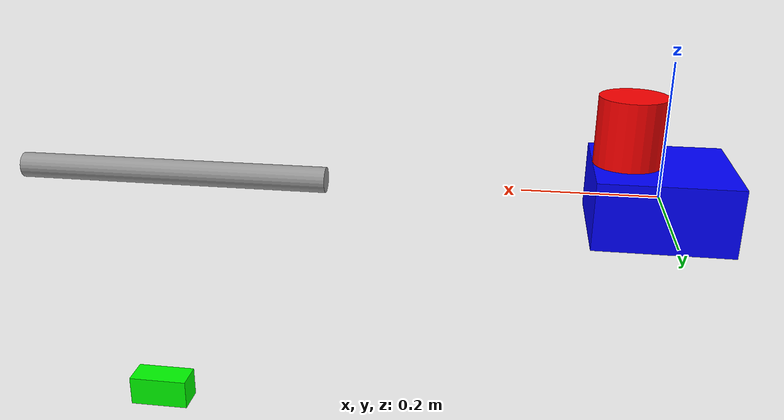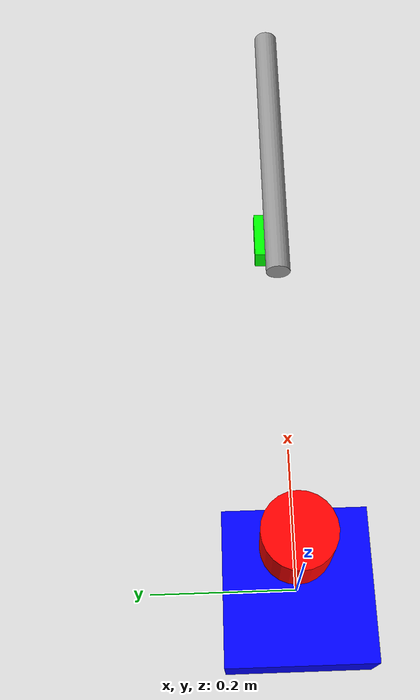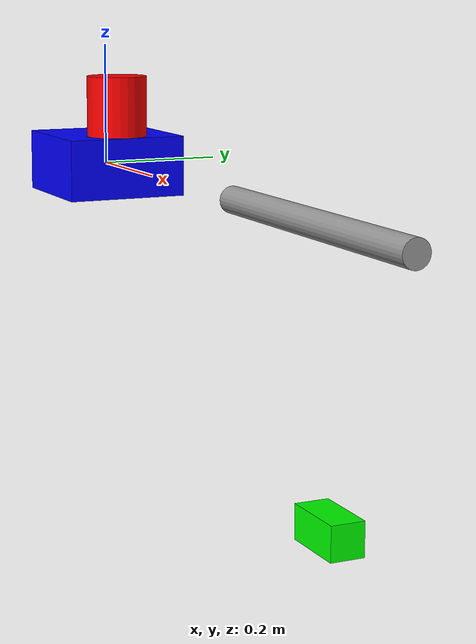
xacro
<?xml version="1.0"?>
<robot name="orca" xmlns:xacro="http://ros.org/wiki/xacro">

  <!-- base_link -->
  <link name="base_link">
    <visual>
      <geometry>
        <box size="0.2 0.2 0.1"/>
      </geometry>
      <origin xyz="0 0 0" rpy="0 0 0"/>
      <material name="blue">
        <color rgba="0 0 1 1"/>
      </material>
    </visual>
  </link>

  <!-- dvl_link -->
  <link name="dvl_link">
    <visual>
      <geometry>
        <cylinder radius="0.05" length="0.1"/>
      </geometry>
      <origin xyz="0 0 0" rpy="0 0 0"/>
      <material name="red">
        <color rgba="1 0 0 1"/>
      </material>
    </visual>
  </link>

  <!-- base to dvl -->
  <joint name="base_to_dvl" type="fixed">
    <parent link="base_link"/>
    <child link="dvl_link"/>
    <origin xyz="0.05 0.0 0.1" rpy="0.0 0.0 0.0"/>
  </joint>

  <!-- gripper shoulder (entry point) -->
  <link name="gripper_shoulder"/>

  <joint name="base_to_gripper" type="fixed">
    <parent link="base_link"/>
    <child link="gripper_shoulder"/>
    <origin xyz="0.5 0 0" rpy="0 0 0"/>
  </joint>

  <!-- pitch joint -->
  <joint name="gripper_pitch_joint" type="revolute">
    <parent link="gripper_shoulder"/>
    <child link="gripper_pitch_link"/>
    <origin xyz="0 0 0" rpy="0 0 0"/>
    <axis xyz="0 1 0"/>
    <limit lower="-1.57" upper="1.57" effort="10" velocity="1.0"/>
  </joint>
  <link name="gripper_pitch_link">
    <visual>
      <geometry>
        <cylinder radius="0.02" length="0.5"/>
      </geometry>
      <!-- Rotate cylinder from Z-axis to X-axis -->
      <origin xyz="0.25 0 0" rpy="0 1.5708 0"/>
      <material name="gray">
        <color rgba="0.6 0.6 0.6 1"/>
      </material>
    </visual>
  </link>

   <!-- zed_camera_link -->
  <link name="zed_camera_link">
    <visual>
      <geometry>
        <box size="0.1 0.05 0.05"/>
      </geometry>
      <origin xyz="0 0 0" rpy="0 0 0"/>
      <material name="green">
        <color rgba="0 1 0 1"/>
      </material>
    </visual>
  </link>

  <joint name="gripper_to_zed" type="fixed">
    <parent link="gripper_pitch_link"/>
    <child link="zed_camera_link"/>
    <origin xyz="0.3 0.0 -0.4" rpy="3.14159 0 0"/>
  </joint>

</robot>
